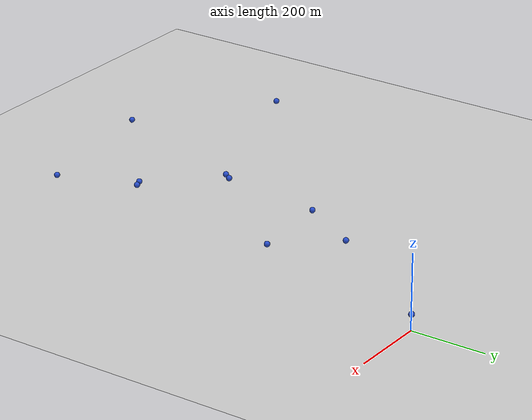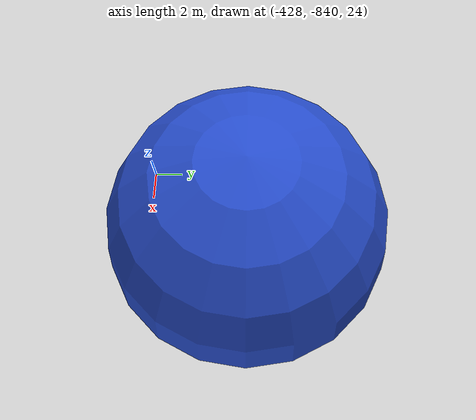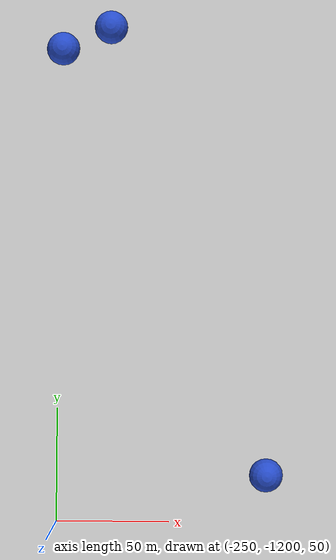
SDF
<?xml version="1.0" encoding="UTF-8"?>
<sdf version="1.9">
  <world name="default">
    <physics type="ode">
      <max_step_size>0.004</max_step_size>
      <real_time_factor>1.0</real_time_factor>
      <real_time_update_rate>250</real_time_update_rate>
    </physics>
    <plugin name="gz::sim::systems::Physics" filename="gz-sim-physics-system"/>
    <plugin name="gz::sim::systems::UserCommands" filename="gz-sim-user-commands-system"/>
    <plugin name="gz::sim::systems::SceneBroadcaster" filename="gz-sim-scene-broadcaster-system"/>
    <plugin name="gz::sim::systems::Contact" filename="gz-sim-contact-system"/>
    <plugin name="gz::sim::systems::Imu" filename="gz-sim-imu-system"/>
    <plugin name="gz::sim::systems::AirPressure" filename="gz-sim-air-pressure-system"/>
    <plugin name="gz::sim::systems::ApplyLinkWrench" filename="gz-sim-apply-link-wrench-system"/>
    <plugin name="gz::sim::systems::NavSat" filename="gz-sim-navsat-system"/>
    <plugin name="gz::sim::systems::Sensors" filename="gz-sim-sensors-system">
      <render_engine>ogre2</render_engine>
    </plugin>
    <gui fullscreen="false">
      <!-- 3D scene -->
      <plugin filename="MinimalScene" name="3D View">
        <gz-gui>
          <title>3D View</title>
          <property type="bool" key="showTitleBar">false</property>
          <property type="string" key="state">docked</property>
        </gz-gui>
        <engine>ogre2</engine>
        <scene>scene</scene>
        <ambient_light>0.4 0.4 0.4</ambient_light>
        <background_color>0.8 0.8 0.8</background_color>
        <camera_pose>-6 0 6 0 0.5 0</camera_pose>
        <camera_clip>
          <near>0.25</near>
          <far>25000</far>
        </camera_clip>
      </plugin>
      <!-- Plugins that add functionality to the scene -->
      <plugin filename="EntityContextMenuPlugin" name="Entity context menu">
        <gz-gui>
          <property key="state" type="string">floating</property>
          <property key="width" type="double">5</property>
          <property key="height" type="double">5</property>
          <property key="showTitleBar" type="bool">false</property>
        </gz-gui>
      </plugin>
      <plugin filename="GzSceneManager" name="Scene Manager">
        <gz-gui>
          <property key="resizable" type="bool">false</property>
          <property key="width" type="double">5</property>
          <property key="height" type="double">5</property>
          <property key="state" type="string">floating</property>
          <property key="showTitleBar" type="bool">false</property>
        </gz-gui>
      </plugin>
      <plugin filename="InteractiveViewControl" name="Interactive view control">
        <gz-gui>
          <property key="resizable" type="bool">false</property>
          <property key="width" type="double">5</property>
          <property key="height" type="double">5</property>
          <property key="state" type="string">floating</property>
          <property key="showTitleBar" type="bool">false</property>
        </gz-gui>
      </plugin>
      <plugin filename="CameraTracking" name="Camera Tracking">
        <gz-gui>
          <property key="resizable" type="bool">false</property>
          <property key="width" type="double">5</property>
          <property key="height" type="double">5</property>
          <property key="state" type="string">floating</property>
          <property key="showTitleBar" type="bool">false</property>
        </gz-gui>
      </plugin>
      <plugin filename="MarkerManager" name="Marker manager">
        <gz-gui>
          <property key="resizable" type="bool">false</property>
          <property key="width" type="double">5</property>
          <property key="height" type="double">5</property>
          <property key="state" type="string">floating</property>
          <property key="showTitleBar" type="bool">false</property>
        </gz-gui>
      </plugin>
      <plugin filename="SelectEntities" name="Select Entities">
        <gz-gui>
          <anchors target="Select entities">
            <line own="right" target="right"/>
            <line own="top" target="top"/>
          </anchors>
          <property key="resizable" type="bool">false</property>
          <property key="width" type="double">5</property>
          <property key="height" type="double">5</property>
          <property key="state" type="string">floating</property>
          <property key="showTitleBar" type="bool">false</property>
        </gz-gui>
      </plugin>
      <plugin filename="VisualizationCapabilities" name="Visualization Capabilities">
        <gz-gui>
          <property key="resizable" type="bool">false</property>
          <property key="width" type="double">5</property>
          <property key="height" type="double">5</property>
          <property key="state" type="string">floating</property>
          <property key="showTitleBar" type="bool">false</property>
        </gz-gui>
      </plugin>
      <plugin filename="Spawn" name="Spawn Entities">
        <gz-gui>
          <anchors target="Select entities">
            <line own="right" target="right"/>
            <line own="top" target="top"/>
          </anchors>
          <property key="resizable" type="bool">false</property>
          <property key="width" type="double">5</property>
          <property key="height" type="double">5</property>
          <property key="state" type="string">floating</property>
          <property key="showTitleBar" type="bool">false</property>
        </gz-gui>
      </plugin>
      <plugin name="World control" filename="WorldControl">
        <gz-gui>
          <title>World control</title>
          <property type="bool" key="showTitleBar">0</property>
          <property type="bool" key="resizable">0</property>
          <property type="double" key="height">72</property>
          <property type="double" key="width">121</property>
          <property type="double" key="z">1</property>
          <property type="string" key="state">floating</property>
          <anchors target="3D View">
            <line own="left" target="left"/>
            <line own="bottom" target="bottom"/>
          </anchors>
        </gz-gui>
        <play_pause>1</play_pause>
        <step>1</step>
        <start_paused>1</start_paused>
      </plugin>
      <plugin name="World stats" filename="WorldStats">
        <gz-gui>
          <title>World stats</title>
          <property type="bool" key="showTitleBar">0</property>
          <property type="bool" key="resizable">0</property>
          <property type="double" key="height">110</property>
          <property type="double" key="width">290</property>
          <property type="double" key="z">1</property>
          <property type="string" key="state">floating</property>
          <anchors target="3D View">
            <line own="right" target="right"/>
            <line own="bottom" target="bottom"/>
          </anchors>
        </gz-gui>
        <sim_time>1</sim_time>
        <real_time>1</real_time>
        <real_time_factor>1</real_time_factor>
        <iterations>1</iterations>
      </plugin>
      <plugin name="Entity tree" filename="EntityTree"/>
    </gui>
    <gravity>0 0 -9.8</gravity>
    <magnetic_field>6e-06 2.3e-05 -4.2e-05</magnetic_field>
    <atmosphere type="adiabatic"/>
    <scene>
      <grid>false</grid>
      <ambient>0.4 0.4 0.4 1</ambient>
      <background>0.7 0.7 0.7 1</background>
      <shadows>true</shadows>
    </scene>
    <model name="ground_plane">
      <static>true</static>
      <link name="link">
        <collision name="collision">
          <geometry>
            <plane>
              <normal>0 0 1</normal>
              <size>1 1</size>
            </plane>
          </geometry>
          <surface>
            <friction>
              <ode/>
            </friction>
            <bounce/>
            <contact/>
          </surface>
        </collision>
        <visual name="visual">
          <geometry>
            <plane>
              <normal>0 0 1</normal>
              <size>100 100</size>
            </plane>
          </geometry>
          <material>
            <ambient>0.8 0.8 0.8 1</ambient>
            <diffuse>0.8 0.8 0.8 1</diffuse>
            <specular>0.8 0.8 0.8 1</specular>
          </material>
        </visual>
        <pose>0 0 0 0 -0 0</pose>
        <inertial>
          <pose>0 0 0 0 -0 0</pose>
          <mass>1</mass>
          <inertia>
            <ixx>1</ixx>
            <ixy>0</ixy>
            <ixz>0</ixz>
            <iyy>1</iyy>
            <iyz>0</iyz>
            <izz>1</izz>
          </inertia>
        </inertial>
        <enable_wind>false</enable_wind>
      </link>
      <pose>0 0 0 0 -0 0</pose>
      <self_collide>false</self_collide>
    </model>
    <light name="sunUTC" type="directional">
      <pose>0 0 500 0 -0 0</pose>
      <cast_shadows>true</cast_shadows>
      <intensity>1</intensity>
      <direction>0.001 0.625 -0.78</direction>
      <diffuse>0.904 0.904 0.904 1</diffuse>
      <specular>0.271 0.271 0.271 1</specular>
      <attenuation>
        <range>2000</range>
        <linear>0</linear>
        <constant>1</constant>
        <quadratic>0</quadratic>
      </attenuation>
      <spot>
        <inner_angle>0</inner_angle>
        <outer_angle>0</outer_angle>
        <falloff>0</falloff>
      </spot>
    </light>
    <spherical_coordinates>
      <surface_model>EARTH_WGS84</surface_model>
      <world_frame_orientation>ENU</world_frame_orientation>
      <latitude_deg>0.0</latitude_deg>
      <longitude_deg> 0.0</longitude_deg>
      <elevation>0</elevation>
    </spherical_coordinates>

    <model name='user_way_Point_1'>
	<static>1</static>
	<pose>0.0 0.0 43.281600000000005 0 -0 0</pose>
<link name='link'>
<gravity>0</gravity>
	<inertial>
	<mass>1</mass>
	<inertia>
		<ixx>0.0001</ixx>
		<ixy>0</ixy>
		<ixz>0</ixz>
		<iyy>0.0001</iyy>
		<iyz>0</iyz>
		<izz>0.0001</izz>
	</inertia>
<pose> 0 0 0 0 -0 0</pose>
</inertial>
<collision name='collision'>
	<max_contacts>0</max_contacts>
	<geometry>
		<sphere>
			<radius>7.62</radius>
		</sphere>
	</geometry>
	<surface>
		<contact>
			<collide_without_contact>true</collide_without_contact>
			<collide_bitmask>0</collide_bitmask>
		</contact>
	</surface>
</collision>
<visual name='visual'>
	<geometry>
		<sphere>
			<radius>7.62</radius>
		</sphere>
	</geometry>
	<material>
		<script>
			<name>Gazebo/Blue</name>
			<uri>file://media/materials/scripts/gazebo.material</uri>
		</script>
	</material>
</visual>
<self_collide>0</self_collide>
<enable_wind>0</enable_wind>
<kinematic>0</kinematic>
</link>
</model>
<model name='user_way_Point_2'>
	<static>1</static>
	<pose>-258.90838661899625 -353.47210823775293 35.889264465998394 0 -0 0</pose>
<link name='link'>
<gravity>0</gravity>
	<inertial>
	<mass>1</mass>
	<inertia>
		<ixx>0.0001</ixx>
		<ixy>0</ixy>
		<ixz>0</ixz>
		<iyy>0.0001</iyy>
		<iyz>0</iyz>
		<izz>0.0001</izz>
	</inertia>
<pose> 0 0 0 0 -0 0</pose>
</inertial>
<collision name='collision'>
	<max_contacts>0</max_contacts>
	<geometry>
		<sphere>
			<radius>7.62</radius>
		</sphere>
	</geometry>
	<surface>
		<contact>
			<collide_without_contact>true</collide_without_contact>
			<collide_bitmask>0</collide_bitmask>
		</contact>
	</surface>
</collision>
<visual name='visual'>
	<geometry>
		<sphere>
			<radius>7.62</radius>
		</sphere>
	</geometry>
	<material>
		<script>
			<name>Gazebo/Blue</name>
			<uri>file://media/materials/scripts/gazebo.material</uri>
		</script>
	</material>
</visual>
<self_collide>0</self_collide>
<enable_wind>0</enable_wind>
<kinematic>0</kinematic>
</link>
</model>
<model name='user_way_Point_3'>
	<static>1</static>
	<pose>-394.4781603618793 -804.39145868674 37.78250201569889 0 -0 0</pose>
<link name='link'>
<gravity>0</gravity>
	<inertial>
	<mass>1</mass>
	<inertia>
		<ixx>0.0001</ixx>
		<ixy>0</ixy>
		<ixz>0</ixz>
		<iyy>0.0001</iyy>
		<iyz>0</iyz>
		<izz>0.0001</izz>
	</inertia>
<pose> 0 0 0 0 -0 0</pose>
</inertial>
<collision name='collision'>
	<max_contacts>0</max_contacts>
	<geometry>
		<sphere>
			<radius>7.62</radius>
		</sphere>
	</geometry>
	<surface>
		<contact>
			<collide_without_contact>true</collide_without_contact>
			<collide_bitmask>0</collide_bitmask>
		</contact>
	</surface>
</collision>
<visual name='visual'>
	<geometry>
		<sphere>
			<radius>7.62</radius>
		</sphere>
	</geometry>
	<material>
		<script>
			<name>Gazebo/Blue</name>
			<uri>file://media/materials/scripts/gazebo.material</uri>
		</script>
	</material>
</visual>
<self_collide>0</self_collide>
<enable_wind>0</enable_wind>
<kinematic>0</kinematic>
</link>
</model>
<model name='user_way_Point_4'>
	<static>1</static>
	<pose>-156.04597004596198 -1180.3717291193939 37.767610862114246 0 -0 0</pose>
<link name='link'>
<gravity>0</gravity>
	<inertial>
	<mass>1</mass>
	<inertia>
		<ixx>0.0001</ixx>
		<ixy>0</ixy>
		<ixz>0</ixz>
		<iyy>0.0001</iyy>
		<iyz>0</iyz>
		<izz>0.0001</izz>
	</inertia>
<pose> 0 0 0 0 -0 0</pose>
</inertial>
<collision name='collision'>
	<max_contacts>0</max_contacts>
	<geometry>
		<sphere>
			<radius>7.62</radius>
		</sphere>
	</geometry>
	<surface>
		<contact>
			<collide_without_contact>true</collide_without_contact>
			<collide_bitmask>0</collide_bitmask>
		</contact>
	</surface>
</collision>
<visual name='visual'>
	<geometry>
		<sphere>
			<radius>7.62</radius>
		</sphere>
	</geometry>
	<material>
		<script>
			<name>Gazebo/Blue</name>
			<uri>file://media/materials/scripts/gazebo.material</uri>
		</script>
	</material>
</visual>
<self_collide>0</self_collide>
<enable_wind>0</enable_wind>
<kinematic>0</kinematic>
</link>
</model>
<model name='user_way_Point_5'>
	<static>1</static>
	<pose>-419.9639195738706 -832.8933967912208 32.43029658372664 0 -0 0</pose>
<link name='link'>
<gravity>0</gravity>
	<inertial>
	<mass>1</mass>
	<inertia>
		<ixx>0.0001</ixx>
		<ixy>0</ixy>
		<ixz>0</ixz>
		<iyy>0.0001</iyy>
		<iyz>0</iyz>
		<izz>0.0001</izz>
	</inertia>
<pose> 0 0 0 0 -0 0</pose>
</inertial>
<collision name='collision'>
	<max_contacts>0</max_contacts>
	<geometry>
		<sphere>
			<radius>7.62</radius>
		</sphere>
	</geometry>
	<surface>
		<contact>
			<collide_without_contact>true</collide_without_contact>
			<collide_bitmask>0</collide_bitmask>
		</contact>
	</surface>
</collision>
<visual name='visual'>
	<geometry>
		<sphere>
			<radius>7.62</radius>
		</sphere>
	</geometry>
	<material>
		<script>
			<name>Gazebo/Blue</name>
			<uri>file://media/materials/scripts/gazebo.material</uri>
		</script>
	</material>
</visual>
<self_collide>0</self_collide>
<enable_wind>0</enable_wind>
<kinematic>0</kinematic>
</link>
</model>
<model name='user_way_Point_6'>
	<static>1</static>
	<pose>-139.8944986063426 -506.4185971649198 30.51598930405771 0 -0 0</pose>
<link name='link'>
<gravity>0</gravity>
	<inertial>
	<mass>1</mass>
	<inertia>
		<ixx>0.0001</ixx>
		<ixy>0</ixy>
		<ixz>0</ixz>
		<iyy>0.0001</iyy>
		<iyz>0</iyz>
		<izz>0.0001</izz>
	</inertia>
<pose> 0 0 0 0 -0 0</pose>
</inertial>
<collision name='collision'>
	<max_contacts>0</max_contacts>
	<geometry>
		<sphere>
			<radius>7.62</radius>
		</sphere>
	</geometry>
	<surface>
		<contact>
			<collide_without_contact>true</collide_without_contact>
			<collide_bitmask>0</collide_bitmask>
		</contact>
	</surface>
</collision>
<visual name='visual'>
	<geometry>
		<sphere>
			<radius>7.62</radius>
		</sphere>
	</geometry>
	<material>
		<script>
			<name>Gazebo/Blue</name>
			<uri>file://media/materials/scripts/gazebo.material</uri>
		</script>
	</material>
</visual>
<self_collide>0</self_collide>
<enable_wind>0</enable_wind>
<kinematic>0</kinematic>
</link>
</model>
<model name='user_way_Point_7'>
	<static>1</static>
	<pose>-228.56863618813142 -975.7443449741631 35.72790501020835 0 -0 0</pose>
<link name='link'>
<gravity>0</gravity>
	<inertial>
	<mass>1</mass>
	<inertia>
		<ixx>0.0001</ixx>
		<ixy>0</ixy>
		<ixz>0</ixz>
		<iyy>0.0001</iyy>
		<iyz>0</iyz>
		<izz>0.0001</izz>
	</inertia>
<pose> 0 0 0 0 -0 0</pose>
</inertial>
<collision name='collision'>
	<max_contacts>0</max_contacts>
	<geometry>
		<sphere>
			<radius>7.62</radius>
		</sphere>
	</geometry>
	<surface>
		<contact>
			<collide_without_contact>true</collide_without_contact>
			<collide_bitmask>0</collide_bitmask>
		</contact>
	</surface>
</collision>
<visual name='visual'>
	<geometry>
		<sphere>
			<radius>7.62</radius>
		</sphere>
	</geometry>
	<material>
		<script>
			<name>Gazebo/Blue</name>
			<uri>file://media/materials/scripts/gazebo.material</uri>
		</script>
	</material>
</visual>
<self_collide>0</self_collide>
<enable_wind>0</enable_wind>
<kinematic>0</kinematic>
</link>
</model>
<model name='user_way_Point_8'>
	<static>1</static>
	<pose>-366.11502800677624 -525.7957138898464 31.83668545009971 0 -0 0</pose>
<link name='link'>
<gravity>0</gravity>
	<inertial>
	<mass>1</mass>
	<inertia>
		<ixx>0.0001</ixx>
		<ixy>0</ixy>
		<ixz>0</ixz>
		<iyy>0.0001</iyy>
		<iyz>0</iyz>
		<izz>0.0001</izz>
	</inertia>
<pose> 0 0 0 0 -0 0</pose>
</inertial>
<collision name='collision'>
	<max_contacts>0</max_contacts>
	<geometry>
		<sphere>
			<radius>7.62</radius>
		</sphere>
	</geometry>
	<surface>
		<contact>
			<collide_without_contact>true</collide_without_contact>
			<collide_bitmask>0</collide_bitmask>
		</contact>
	</surface>
</collision>
<visual name='visual'>
	<geometry>
		<sphere>
			<radius>7.62</radius>
		</sphere>
	</geometry>
	<material>
		<script>
			<name>Gazebo/Blue</name>
			<uri>file://media/materials/scripts/gazebo.material</uri>
		</script>
	</material>
</visual>
<self_collide>0</self_collide>
<enable_wind>0</enable_wind>
<kinematic>0</kinematic>
</link>
</model>
<model name='user_way_Point_9'>
	<static>1</static>
	<pose>-250.62458500257787 -985.6252908924895 34.70164032546047 0 -0 0</pose>
<link name='link'>
<gravity>0</gravity>
	<inertial>
	<mass>1</mass>
	<inertia>
		<ixx>0.0001</ixx>
		<ixy>0</ixy>
		<ixz>0</ixz>
		<iyy>0.0001</iyy>
		<iyz>0</iyz>
		<izz>0.0001</izz>
	</inertia>
<pose> 0 0 0 0 -0 0</pose>
</inertial>
<collision name='collision'>
	<max_contacts>0</max_contacts>
	<geometry>
		<sphere>
			<radius>7.62</radius>
		</sphere>
	</geometry>
	<surface>
		<contact>
			<collide_without_contact>true</collide_without_contact>
			<collide_bitmask>0</collide_bitmask>
		</contact>
	</surface>
</collision>
<visual name='visual'>
	<geometry>
		<sphere>
			<radius>7.62</radius>
		</sphere>
	</geometry>
	<material>
		<script>
			<name>Gazebo/Blue</name>
			<uri>file://media/materials/scripts/gazebo.material</uri>
		</script>
	</material>
</visual>
<self_collide>0</self_collide>
<enable_wind>0</enable_wind>
<kinematic>0</kinematic>
</link>
</model>
<model name='user_way_Point_10'>
	<static>1</static>
	<pose>-567.1474474655132 -1253.157279955981 33.35368558016556 0 -0 0</pose>
<link name='link'>
<gravity>0</gravity>
	<inertial>
	<mass>1</mass>
	<inertia>
		<ixx>0.0001</ixx>
		<ixy>0</ixy>
		<ixz>0</ixz>
		<iyy>0.0001</iyy>
		<iyz>0</iyz>
		<izz>0.0001</izz>
	</inertia>
<pose> 0 0 0 0 -0 0</pose>
</inertial>
<collision name='collision'>
	<max_contacts>0</max_contacts>
	<geometry>
		<sphere>
			<radius>7.62</radius>
		</sphere>
	</geometry>
	<surface>
		<contact>
			<collide_without_contact>true</collide_without_contact>
			<collide_bitmask>0</collide_bitmask>
		</contact>
	</surface>
</collision>
<visual name='visual'>
	<geometry>
		<sphere>
			<radius>7.62</radius>
		</sphere>
	</geometry>
	<material>
		<script>
			<name>Gazebo/Blue</name>
			<uri>file://media/materials/scripts/gazebo.material</uri>
		</script>
	</material>
</visual>
<self_collide>0</self_collide>
<enable_wind>0</enable_wind>
<kinematic>0</kinematic>
</link>
</model>
<model name='user_way_Point_11'>
	<static>1</static>
	<pose>-892.3744808529027 -1003.0283722717946 37.87923861435977 0 -0 0</pose>
<link name='link'>
<gravity>0</gravity>
	<inertial>
	<mass>1</mass>
	<inertia>
		<ixx>0.0001</ixx>
		<ixy>0</ixy>
		<ixz>0</ixz>
		<iyy>0.0001</iyy>
		<iyz>0</iyz>
		<izz>0.0001</izz>
	</inertia>
<pose> 0 0 0 0 -0 0</pose>
</inertial>
<collision name='collision'>
	<max_contacts>0</max_contacts>
	<geometry>
		<sphere>
			<radius>7.62</radius>
		</sphere>
	</geometry>
	<surface>
		<contact>
			<collide_without_contact>true</collide_without_contact>
			<collide_bitmask>0</collide_bitmask>
		</contact>
	</surface>
</collision>
<visual name='visual'>
	<geometry>
		<sphere>
			<radius>7.62</radius>
		</sphere>
	</geometry>
	<material>
		<script>
			<name>Gazebo/Blue</name>
			<uri>file://media/materials/scripts/gazebo.material</uri>
		</script>
	</material>
</visual>
<self_collide>0</self_collide>
<enable_wind>0</enable_wind>
<kinematic>0</kinematic>
</link>
</model>
</world>
</sdf>
